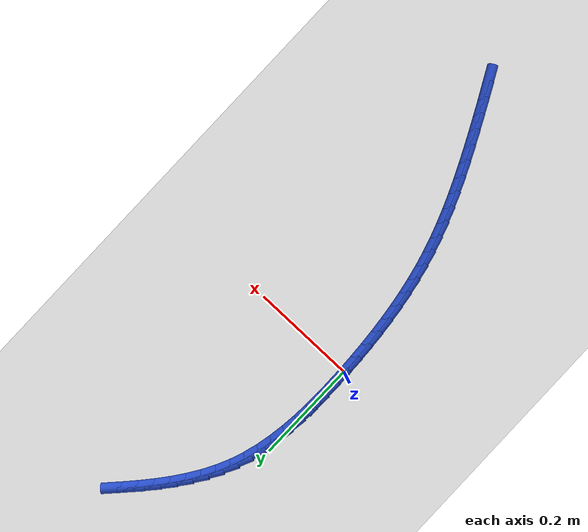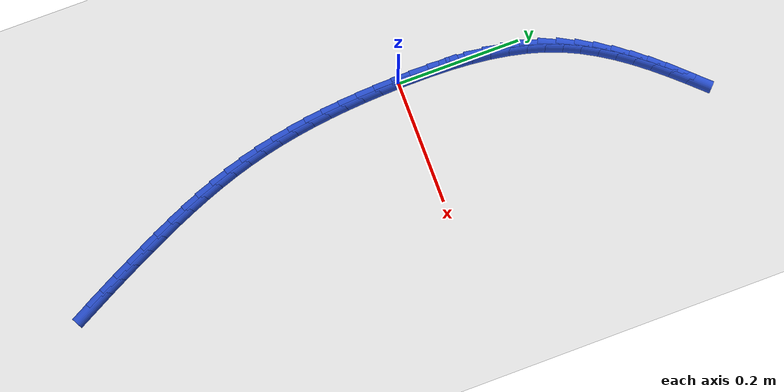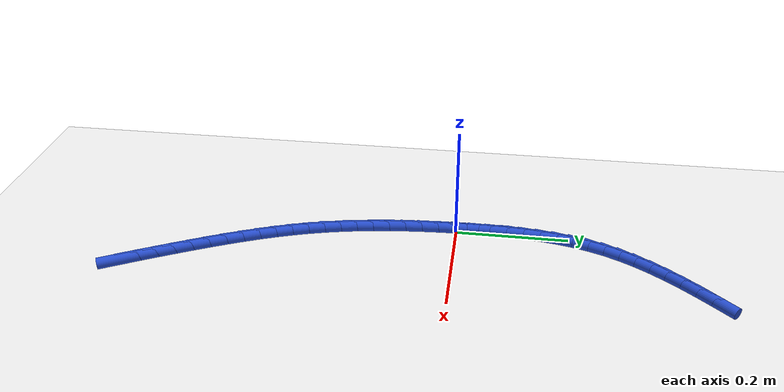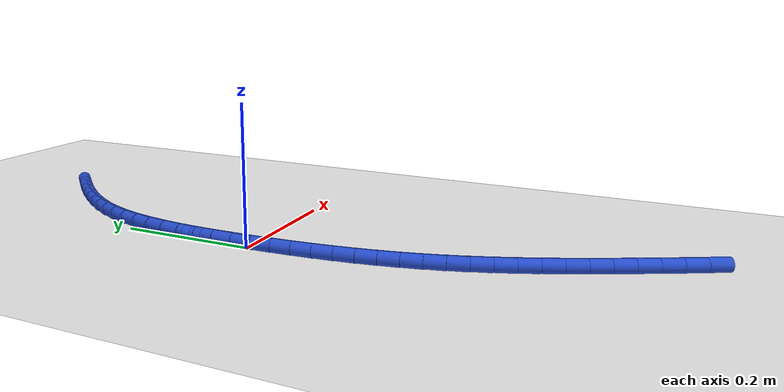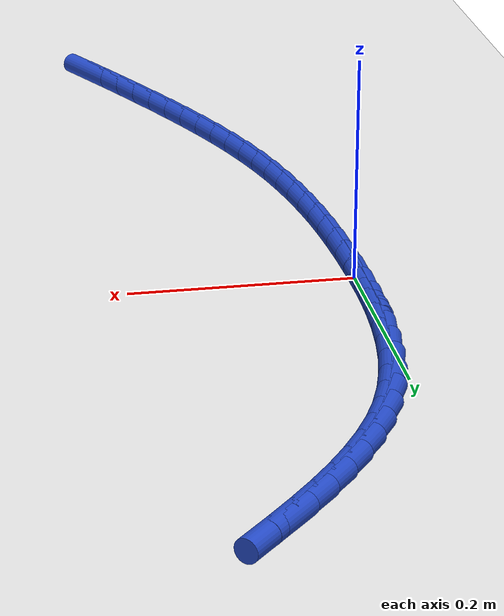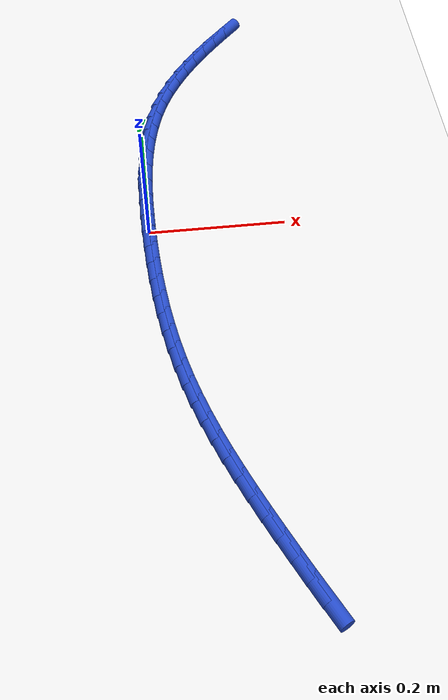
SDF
<sdf version="1.6">
 <world name="default">
  <model name="ground_plane">
   <static>1</static>
   <link name="link">
    <collision name="collision">
     <geometry><plane><normal>0 0 1</normal><size>100 100</size></plane></geometry>
     <surface><friction><ode><mu>100</mu><mu2>50</mu2></ode></friction></surface>
    </collision>
    <visual name="visual">
     <cast_shadows>0</cast_shadows>
     <geometry><plane><normal>0 0 1</normal><size>100 100</size></plane></geometry>
     <material>
      <script><uri>file://media/materials/scripts/gazebo.material</uri><name>Gazebo/WhiteGlow</name></script>
     </material>
    </visual>
   </link>
  </model>
  <model name="line">
   <link name="link_0">
    <pose>-2.8189256484623115e-18 2.7755575615628914e-17 0.01 0 1.57 -1.5541181169794733</pose>
    <collision name="collision">
     <geometry><cylinder><radius>0.01</radius><length>0.08</length></cylinder></geometry>
    </collision>
    <visual name="visual">
     <material>
      <script><name>Gazebo/Blue</name><uri>file://media/materials/scripts/gazebo.material</uri></script>
     </material>
     <geometry><cylinder><radius>0.01</radius><length>0.08</length></cylinder></geometry>
    </visual>
   </link>
   <link name="link_1">
    <pose>-0.0005021162119911417 0.030103330034815374 0.01 0 1.57 1.564958978951634</pose>
    <collision name="collision">
     <geometry><cylinder><radius>0.01</radius><length>0.08</length></cylinder></geometry>
    </collision>
    <visual name="visual">
     <material>
      <script><name>Gazebo/Blue</name><uri>file://media/materials/scripts/gazebo.material</uri></script>
     </material>
     <geometry><cylinder><radius>0.01</radius><length>0.08</length></cylinder></geometry>
    </visual>
   </link>
   <link name="link_2">
    <pose>-0.00032616243882828286 0.060245747338506496 0.01 0 1.57 1.5363862531246002</pose>
    <collision name="collision">
     <geometry><cylinder><radius>0.01</radius><length>0.08</length></cylinder></geometry>
    </collision>
    <visual name="visual">
     <material>
      <script><name>Gazebo/Blue</name><uri>file://media/materials/scripts/gazebo.material</uri></script>
     </material>
     <geometry><cylinder><radius>0.01</radius><length>0.08</length></cylinder></geometry>
    </visual>
   </link>
   <link name="link_3">
    <pose>0.000708208300872202 0.09029399621450303 0.01 0 1.57 1.5013883025542831</pose>
    <collision name="collision">
     <geometry><cylinder><radius>0.01</radius><length>0.08</length></cylinder></geometry>
    </collision>
    <visual name="visual">
     <material>
      <script><name>Gazebo/Blue</name><uri>file://media/materials/scripts/gazebo.material</uri></script>
     </material>
     <geometry><cylinder><radius>0.01</radius><length>0.08</length></cylinder></geometry>
    </visual>
   </link>
   <link name="link_4">
    <pose>0.0027813429884939473 0.12011482096623464 0.01 0 1.57 1.4595055573976408</pose>
    <collision name="collision">
     <geometry><cylinder><radius>0.01</radius><length>0.08</length></cylinder></geometry>
    </collision>
    <visual name="visual">
     <material>
      <script><name>Gazebo/Blue</name><uri>file://media/materials/scripts/gazebo.material</uri></script>
     </material>
     <geometry><cylinder><radius>0.01</radius><length>0.08</length></cylinder></geometry>
    </visual>
   </link>
   <link name="link_5">
    <pose>0.006073588605420581 0.1495749658971309 0.01 0 1.57 1.4102192630146893</pose>
    <collision name="collision">
     <geometry><cylinder><radius>0.01</radius><length>0.08</length></cylinder></geometry>
    </collision>
    <visual name="visual">
     <material>
      <script><name>Gazebo/Blue</name><uri>file://media/materials/scripts/gazebo.material</uri></script>
     </material>
     <geometry><cylinder><radius>0.01</radius><length>0.08</length></cylinder></geometry>
    </visual>
   </link>
   <link name="link_6">
    <pose>0.01076529213303574 0.1785411753106215 0.01 0 1.57 1.3530035605198134</pose>
    <collision name="collision">
     <geometry><cylinder><radius>0.01</radius><length>0.08</length></cylinder></geometry>
    </collision>
    <visual name="visual">
     <material>
      <script><name>Gazebo/Blue</name><uri>file://media/materials/scripts/gazebo.material</uri></script>
     </material>
     <geometry><cylinder><radius>0.01</radius><length>0.08</length></cylinder></geometry>
    </visual>
   </link>
   <link name="link_7">
    <pose>0.01703680055272305 0.20688019351013612 0.01 0 1.57 1.2874062685664498</pose>
    <collision name="collision">
     <geometry><cylinder><radius>0.01</radius><length>0.08</length></cylinder></geometry>
    </collision>
    <visual name="visual">
     <material>
      <script><name>Gazebo/Blue</name><uri>file://media/materials/scripts/gazebo.material</uri></script>
     </material>
     <geometry><cylinder><radius>0.01</radius><length>0.08</length></cylinder></geometry>
    </visual>
   </link>
   <link name="link_8">
    <pose>0.025068460845866135 0.23445876479910427 0.01 0 1.57 1.2131669501022595</pose>
    <collision name="collision">
     <geometry><cylinder><radius>0.01</radius><length>0.08</length></cylinder></geometry>
    </collision>
    <visual name="visual">
     <material>
      <script><name>Gazebo/Blue</name><uri>file://media/materials/scripts/gazebo.material</uri></script>
     </material>
     <geometry><cylinder><radius>0.01</radius><length>0.08</length></cylinder></geometry>
    </visual>
   </link>
   <link name="link_9">
    <pose>0.03504057391919863 0.26114366161376984 0.01 0 1.57 1.133864592434289</pose>
    <collision name="collision">
     <geometry><cylinder><radius>0.01</radius><length>0.08</length></cylinder></geometry>
    </collision>
    <visual name="visual">
     <material>
      <script><name>Gazebo/Blue</name><uri>file://media/materials/scripts/gazebo.material</uri></script>
     </material>
     <geometry><cylinder><radius>0.01</radius><length>0.08</length></cylinder></geometry>
    </visual>
   </link>
   <link name="link_10">
    <pose>0.04704814620303539 0.2868537365181433 0.01 0 1.57 1.0609197359659526</pose>
    <collision name="collision">
     <geometry><cylinder><radius>0.01</radius><length>0.08</length></cylinder></geometry>
    </collision>
    <visual name="visual">
     <material>
      <script><name>Gazebo/Blue</name><uri>file://media/materials/scripts/gazebo.material</uri></script>
     </material>
     <geometry><cylinder><radius>0.01</radius><length>0.08</length></cylinder></geometry>
    </visual>
   </link>
   <link name="link_11">
    <pose>0.06092412018689322 0.31166785623064164 0.01 0 1.57 0.9970830469053988</pose>
    <collision name="collision">
     <geometry><cylinder><radius>0.01</radius><length>0.08</length></cylinder></geometry>
    </collision>
    <visual name="visual">
     <material>
      <script><name>Gazebo/Blue</name><uri>file://media/materials/scripts/gazebo.material</uri></script>
     </material>
     <geometry><cylinder><radius>0.01</radius><length>0.08</length></cylinder></geometry>
    </visual>
   </link>
   <link name="link_12">
    <pose>0.07645127364627094 0.3356955176444032 0.01 0 1.57 0.9425945742052655</pose>
    <collision name="collision">
     <geometry><cylinder><radius>0.01</radius><length>0.08</length></cylinder></geometry>
    </collision>
    <visual name="visual">
     <material>
      <script><name>Gazebo/Blue</name><uri>file://media/materials/scripts/gazebo.material</uri></script>
     </material>
     <geometry><cylinder><radius>0.01</radius><length>0.08</length></cylinder></geometry>
    </visual>
   </link>
   <link name="link_13">
    <pose>0.09341238435666738 0.35904621765256617 0.01 0 1.57 0.8973612643628711</pose>
    <collision name="collision">
     <geometry><cylinder><radius>0.01</radius><length>0.08</length></cylinder></geometry>
    </collision>
    <visual name="visual">
     <material>
      <script><name>Gazebo/Blue</name><uri>file://media/materials/scripts/gazebo.material</uri></script>
     </material>
     <geometry><cylinder><radius>0.01</radius><length>0.08</length></cylinder></geometry>
    </visual>
   </link>
   <link name="link_14">
    <pose>0.11159023009358124 0.38182945314826827 0.01 0 1.57 0.8611016485813237</pose>
    <collision name="collision">
     <geometry><cylinder><radius>0.01</radius><length>0.08</length></cylinder></geometry>
    </collision>
    <visual name="visual">
     <material>
      <script><name>Gazebo/Blue</name><uri>file://media/materials/scripts/gazebo.material</uri></script>
     </material>
     <geometry><cylinder><radius>0.01</radius><length>0.08</length></cylinder></geometry>
    </visual>
   </link>
   <link name="link_15">
    <pose>0.13076758863251134 0.4041547210246477 0.01 0 1.57 0.8334612381252643</pose>
    <collision name="collision">
     <geometry><cylinder><radius>0.01</radius><length>0.08</length></cylinder></geometry>
    </collision>
    <visual name="visual">
     <material>
      <script><name>Gazebo/Blue</name><uri>file://media/materials/scripts/gazebo.material</uri></script>
     </material>
     <geometry><cylinder><radius>0.01</radius><length>0.08</length></cylinder></geometry>
    </visual>
   </link>
   <link name="link_16">
    <pose>0.15072723774895652 0.42613151817484274 0.01 0 1.57 0.8140943284045029</pose>
    <collision name="collision">
     <geometry><cylinder><radius>0.01</radius><length>0.08</length></cylinder></geometry>
    </collision>
    <visual name="visual">
     <material>
      <script><name>Gazebo/Blue</name><uri>file://media/materials/scripts/gazebo.material</uri></script>
     </material>
     <geometry><cylinder><radius>0.01</radius><length>0.08</length></cylinder></geometry>
    </visual>
   </link>
   <link name="link_220">
    <pose>0.164323822523134 -0.5587894468957857 0.01 0 1.57 -1.0866590605746373</pose>
    <collision name="collision">
     <geometry><cylinder><radius>0.01</radius><length>0.08</length></cylinder></geometry>
    </collision>
    <visual name="visual">
     <material>
      <script><name>Gazebo/Blue</name><uri>file://media/materials/scripts/gazebo.material</uri></script>
     </material>
     <geometry><cylinder><radius>0.01</radius><length>0.08</length></cylinder></geometry>
    </visual>
   </link>
   <link name="link_221">
    <pose>0.15014861458659123 -0.5318342758626969 0.01 0 1.57 -1.0999549234716939</pose>
    <collision name="collision">
     <geometry><cylinder><radius>0.01</radius><length>0.08</length></cylinder></geometry>
    </collision>
    <visual name="visual">
     <material>
      <script><name>Gazebo/Blue</name><uri>file://media/materials/scripts/gazebo.material</uri></script>
     </material>
     <geometry><cylinder><radius>0.01</radius><length>0.08</length></cylinder></geometry>
    </visual>
   </link>
   <link name="link_222">
    <pose>0.13638084010944004 -0.5047869240397594 0.01 0 1.57 -1.1076943994797988</pose>
    <collision name="collision">
     <geometry><cylinder><radius>0.01</radius><length>0.08</length></cylinder></geometry>
    </collision>
    <visual name="visual">
     <material>
      <script><name>Gazebo/Blue</name><uri>file://media/materials/scripts/gazebo.material</uri></script>
     </material>
     <geometry><cylinder><radius>0.01</radius><length>0.08</length></cylinder></geometry>
    </visual>
   </link>
   <link name="link_223">
    <pose>0.12291757238509023 -0.4778236151611005 0.01 0 1.57 -1.1162739946269933</pose>
    <collision name="collision">
     <geometry><cylinder><radius>0.01</radius><length>0.08</length></cylinder></geometry>
    </collision>
    <visual name="visual">
     <material>
      <script><name>Gazebo/Blue</name><uri>file://media/materials/scripts/gazebo.material</uri></script>
     </material>
     <geometry><cylinder><radius>0.01</radius><length>0.08</length></cylinder></geometry>
    </visual>
   </link>
   <link name="link_224">
    <pose>0.10979062720766439 -0.4509596384140389 0.01 0 1.57 -1.128440799769647</pose>
    <collision name="collision">
     <geometry><cylinder><radius>0.01</radius><length>0.08</length></cylinder></geometry>
    </collision>
    <visual name="visual">
     <material>
      <script><name>Gazebo/Blue</name><uri>file://media/materials/scripts/gazebo.material</uri></script>
     </material>
     <geometry><cylinder><radius>0.01</radius><length>0.08</length></cylinder></geometry>
    </visual>
   </link>
   <link name="link_225">
    <pose>0.09708845311724848 -0.4241426416310244 0.01 0 1.57 -1.1442718379497878</pose>
    <collision name="collision">
     <geometry><cylinder><radius>0.01</radius><length>0.08</length></cylinder></geometry>
    </collision>
    <visual name="visual">
     <material>
      <script><name>Gazebo/Blue</name><uri>file://media/materials/scripts/gazebo.material</uri></script>
     </material>
     <geometry><cylinder><radius>0.01</radius><length>0.08</length></cylinder></geometry>
    </visual>
   </link>
   <link name="link_226">
    <pose>0.0848996944423944 -0.39732003879751854 0.01 0 1.57 -1.163820854203525</pose>
    <collision name="collision">
     <geometry><cylinder><radius>0.01</radius><length>0.08</length></cylinder></geometry>
    </collision>
    <visual name="visual">
     <material>
      <script><name>Gazebo/Blue</name><uri>file://media/materials/scripts/gazebo.material</uri></script>
     </material>
     <geometry><cylinder><radius>0.01</radius><length>0.08</length></cylinder></geometry>
    </visual>
   </link>
   <link name="link_227">
    <pose>0.07331299551165409 -0.37043924389898303 0.01 0 1.57 -1.1871203986058159</pose>
    <collision name="collision">
     <geometry><cylinder><radius>0.01</radius><length>0.08</length></cylinder></geometry>
    </collision>
    <visual name="visual">
     <material>
      <script><name>Gazebo/Blue</name><uri>file://media/materials/scripts/gazebo.material</uri></script>
     </material>
     <geometry><cylinder><radius>0.01</radius><length>0.08</length></cylinder></geometry>
    </visual>
   </link>
   <link name="link_228">
    <pose>0.062417000653579476 -0.3434476709208796 0.01 0 1.57 -1.2141729159284078</pose>
    <collision name="collision">
     <geometry><cylinder><radius>0.01</radius><length>0.08</length></cylinder></geometry>
    </collision>
    <visual name="visual">
     <material>
      <script><name>Gazebo/Blue</name><uri>file://media/materials/scripts/gazebo.material</uri></script>
     </material>
     <geometry><cylinder><radius>0.01</radius><length>0.08</length></cylinder></geometry>
    </visual>
   </link>
   <link name="link_229">
    <pose>0.05230035419672258 -0.3162927338486703 0.01 0 1.57 -1.2449404035982734</pose>
    <collision name="collision">
     <geometry><cylinder><radius>0.01</radius><length>0.08</length></cylinder></geometry>
    </collision>
    <visual name="visual">
     <material>
      <script><name>Gazebo/Blue</name><uri>file://media/materials/scripts/gazebo.material</uri></script>
     </material>
     <geometry><cylinder><radius>0.01</radius><length>0.08</length></cylinder></geometry>
    </visual>
   </link>
   <link name="link_230">
    <pose>0.043051700469635065 -0.28892184666781573 0.01 0 1.57 -1.2793332363905663</pose>
    <collision name="collision">
     <geometry><cylinder><radius>0.01</radius><length>0.08</length></cylinder></geometry>
    </collision>
    <visual name="visual">
     <material>
      <script><name>Gazebo/Blue</name><uri>file://media/materials/scripts/gazebo.material</uri></script>
     </material>
     <geometry><cylinder><radius>0.01</radius><length>0.08</length></cylinder></geometry>
    </visual>
   </link>
   <link name="link_231">
    <pose>0.03475968380086938 -0.2612824233637793 0.01 0 1.57 -1.3164841412318866</pose>
    <collision name="collision">
     <geometry><cylinder><radius>0.01</radius><length>0.08</length></cylinder></geometry>
    </collision>
    <visual name="visual">
     <material>
      <script><name>Gazebo/Blue</name><uri>file://media/materials/scripts/gazebo.material</uri></script>
     </material>
     <geometry><cylinder><radius>0.01</radius><length>0.08</length></cylinder></geometry>
    </visual>
   </link>
   <link name="link_232">
    <pose>0.027493899308362626 -0.23333068571161947 0.01 0 1.57 -1.3524960314468055</pose>
    <collision name="collision">
     <geometry><cylinder><radius>0.01</radius><length>0.08</length></cylinder></geometry>
    </collision>
    <visual name="visual">
     <material>
      <script><name>Gazebo/Blue</name><uri>file://media/materials/scripts/gazebo.material</uri></script>
     </material>
     <geometry><cylinder><radius>0.01</radius><length>0.08</length></cylinder></geometry>
    </visual>
   </link>
   <link name="link_233">
    <pose>0.021224427714316683 -0.20506886798934248 0.01 0 1.57 -1.3860755725031542</pose>
    <collision name="collision">
     <geometry><cylinder><radius>0.01</radius><length>0.08</length></cylinder></geometry>
    </collision>
    <visual name="visual">
     <material>
      <script><name>Gazebo/Blue</name><uri>file://media/materials/scripts/gazebo.material</uri></script>
     </material>
     <geometry><cylinder><radius>0.01</radius><length>0.08</length></cylinder></geometry>
    </visual>
   </link>
   <link name="link_234">
    <pose>0.015888960590962835 -0.17651418025657384 0.01 0 1.57 -1.417186479583612</pose>
    <collision name="collision">
     <geometry><cylinder><radius>0.01</radius><length>0.08</length></cylinder></geometry>
    </collision>
    <visual name="visual">
     <material>
      <script><name>Gazebo/Blue</name><uri>file://media/materials/scripts/gazebo.material</uri></script>
     </material>
     <geometry><cylinder><radius>0.01</radius><length>0.08</length></cylinder></geometry>
    </visual>
   </link>
   <link name="link_235">
    <pose>0.011425172014455129 -0.14768384066260568 0.01 0 1.57 -1.4458206204772595</pose>
    <collision name="collision">
     <geometry><cylinder><radius>0.01</radius><length>0.08</length></cylinder></geometry>
    </collision>
    <visual name="visual">
     <material>
      <script><name>Gazebo/Blue</name><uri>file://media/materials/scripts/gazebo.material</uri></script>
     </material>
     <geometry><cylinder><radius>0.01</radius><length>0.08</length></cylinder></geometry>
    </visual>
   </link>
   <link name="link_236">
    <pose>0.007770736060947599 -0.11859506735673023 0.01 0 1.57 -1.4719915836775945</pose>
    <collision name="collision">
     <geometry><cylinder><radius>0.01</radius><length>0.08</length></cylinder></geometry>
    </collision>
    <visual name="visual">
     <material>
      <script><name>Gazebo/Blue</name><uri>file://media/materials/scripts/gazebo.material</uri></script>
     </material>
     <geometry><cylinder><radius>0.01</radius><length>0.08</length></cylinder></geometry>
    </visual>
   </link>
   <link name="link_237">
    <pose>0.004863326806594288 -0.08926507848823984 0.01 0 1.57 -1.495729232619073</pose>
    <collision name="collision">
     <geometry><cylinder><radius>0.01</radius><length>0.08</length></cylinder></geometry>
    </collision>
    <visual name="visual">
     <material>
      <script><name>Gazebo/Blue</name><uri>file://media/materials/scripts/gazebo.material</uri></script>
     </material>
     <geometry><cylinder><radius>0.01</radius><length>0.08</length></cylinder></geometry>
    </visual>
   </link>
   <link name="link_238">
    <pose>0.0026406183275491757 -0.05971109220642582 0.01 0 1.57 -1.5170747984795365</pose>
    <collision name="collision">
     <geometry><cylinder><radius>0.01</radius><length>0.08</length></cylinder></geometry>
    </collision>
    <visual name="visual">
     <material>
      <script><name>Gazebo/Blue</name><uri>file://media/materials/scripts/gazebo.material</uri></script>
     </material>
     <geometry><cylinder><radius>0.01</radius><length>0.08</length></cylinder></geometry>
    </visual>
   </link>
   <link name="link_239">
    <pose>0.001040284699966418 -0.029950326660582005 0.01 0 1.57 -1.5360766166710036</pose>
    <collision name="collision">
     <geometry><cylinder><radius>0.01</radius><length>0.08</length></cylinder></geometry>
    </collision>
    <visual name="visual">
     <material>
      <script><name>Gazebo/Blue</name><uri>file://media/materials/scripts/gazebo.material</uri></script>
     </material>
     <geometry><cylinder><radius>0.01</radius><length>0.08</length></cylinder></geometry>
    </visual>
   </link>
   <link name="link_240">
    <pose>-1.3660947373317356e-17 1.457167719820518e-16 0.01 0 1.57 -1.5527865341296148</pose>
    <collision name="collision">
     <geometry><cylinder><radius>0.01</radius><length>0.08</length></cylinder></geometry>
    </collision>
    <visual name="visual">
     <material>
      <script><name>Gazebo/Blue</name><uri>file://media/materials/scripts/gazebo.material</uri></script>
     </material>
     <geometry><cylinder><radius>0.01</radius><length>0.08</length></cylinder></geometry>
    </visual>
   </link>
   <link name="link_241">
    <pose>-0.0005425616961960821 0.03012266962602842 0.01 0 1.57 -1.5672569617005052</pose>
    <collision name="collision">
     <geometry><cylinder><radius>0.01</radius><length>0.08</length></cylinder></geometry>
    </collision>
    <visual name="visual">
     <material>
      <script><name>Gazebo/Blue</name><uri>file://media/materials/scripts/gazebo.material</uri></script>
     </material>
     <geometry><cylinder><radius>0.01</radius><length>0.08</length></cylinder></geometry>
    </visual>
   </link>
   <link name="link_242">
    <pose>-0.0006497263124677507 0.06040046406821059 0.01 0 1.57 -1.560039766166758</pose>
    <collision name="collision">
     <geometry><cylinder><radius>0.01</radius><length>0.08</length></cylinder></geometry>
    </collision>
    <visual name="visual">
     <material>
      <script><name>Gazebo/Blue</name><uri>file://media/materials/scripts/gazebo.material</uri></script>
     </material>
     <geometry><cylinder><radius>0.01</radius><length>0.08</length></cylinder></geometry>
    </visual>
   </link>
  </model>
 </world>
</sdf>
